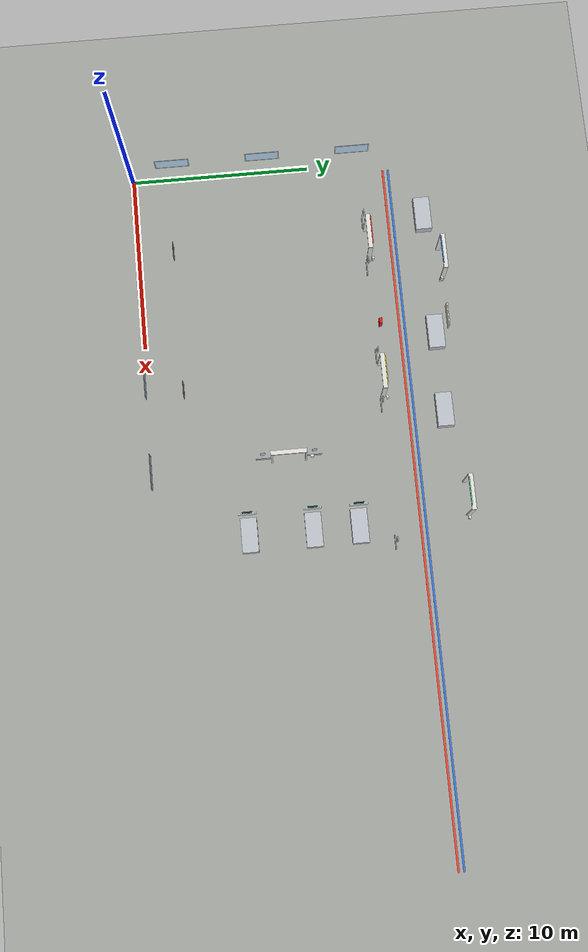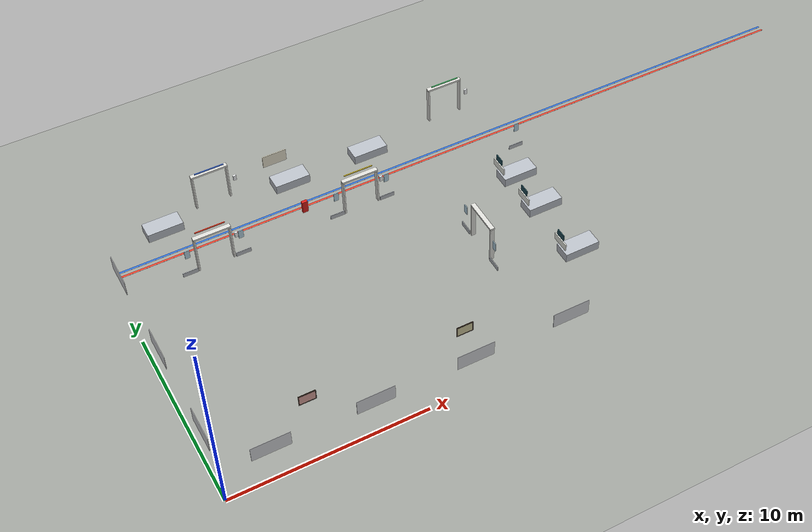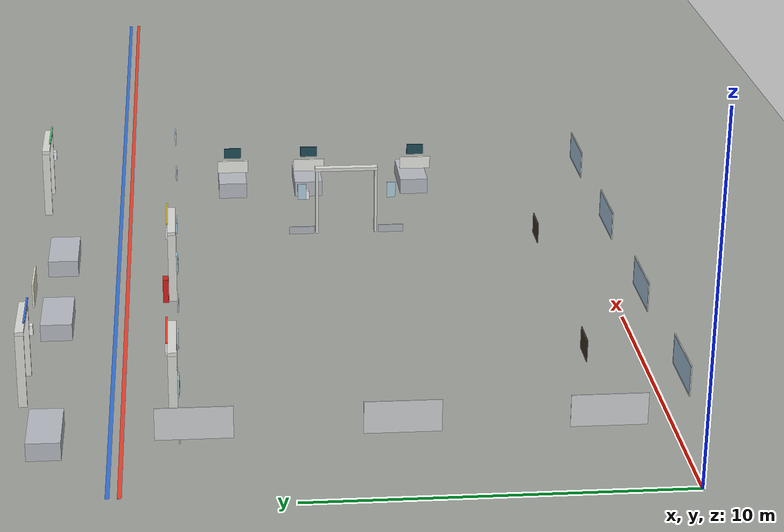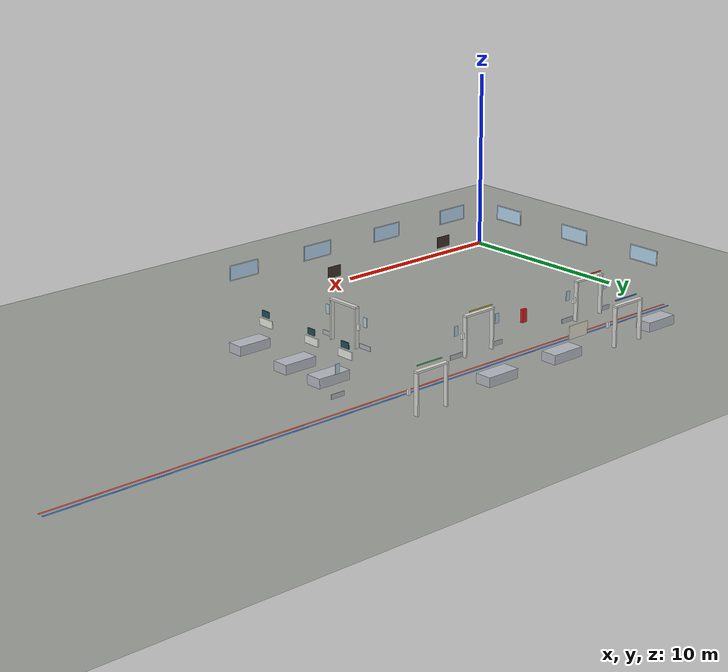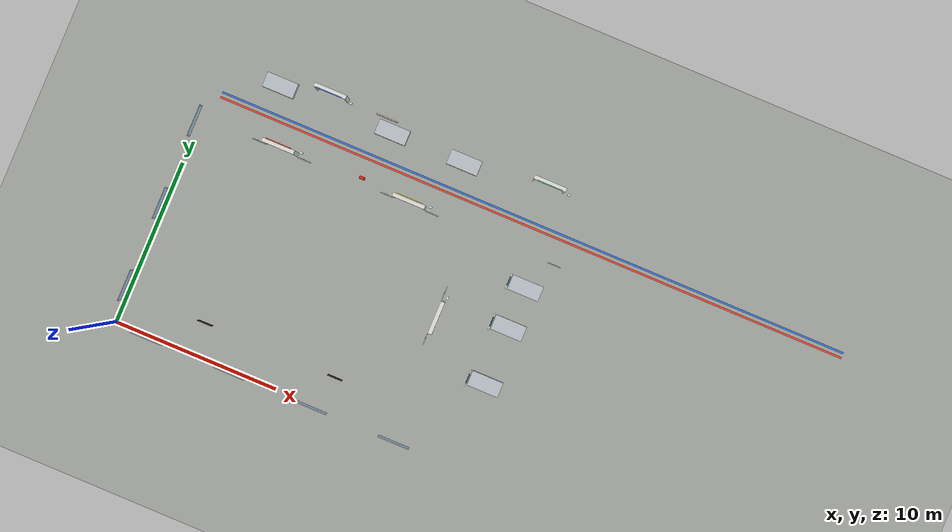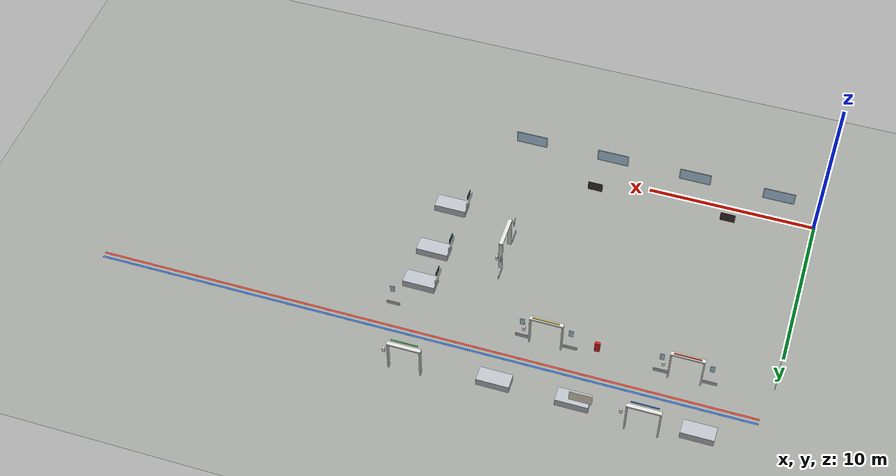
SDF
<sdf version="1.9">
 <world name="hospital">
  <model name="ground_plane">
   <static>true</static>
   <link name="link">
    <collision name="collision">
     <geometry><plane><normal>0 0 1</normal><size>200 200</size></plane></geometry>
    </collision>
    <visual name="visual">
     <pose>0 0 -0.03 0 0 0</pose>
     <cast_shadows>false</cast_shadows>
     <geometry><plane><normal>0 0 1</normal><size>200 200</size></plane></geometry>
     <material>
      <ambient>0.310 0.315 0.305 1.0</ambient>
      <diffuse>0.620 0.630 0.610 1.0</diffuse>
      <specular>0.14 0.14 0.14 1</specular>
      <emissive>0.000 0.000 0.000 1</emissive>
     </material>
    </visual>
   </link>
  </model>
  <model name="bed_18">
   <static>true</static>
   <pose>21.05 5.0 0.25 0 0 0</pose>
   <link name="link">
    <collision name="c">
     <geometry><box><size>1.8999999999999986 0.9000000000000004 0.5</size></box></geometry>
    </collision>
    <visual name="v">
     <visibility_flags>2</visibility_flags>
     <geometry><box><size>1.8999999999999986 0.9000000000000004 0.5</size></box></geometry>
     <material>
      <ambient>0.360 0.370 0.385 1.0</ambient>
      <diffuse>0.720 0.740 0.770 1.0</diffuse>
      <specular>0.14 0.14 0.14 1</specular>
      <emissive>0.000 0.000 0.000 1</emissive>
     </material>
    </visual>
   </link>
  </model>
  <model name="bed_20">
   <static>true</static>
   <pose>21.05 8.5 0.25 0 0 0</pose>
   <link name="link">
    <collision name="c">
     <geometry><box><size>1.8999999999999986 0.8999999999999986 0.5</size></box></geometry>
    </collision>
    <visual name="v">
     <visibility_flags>2</visibility_flags>
     <geometry><box><size>1.8999999999999986 0.8999999999999986 0.5</size></box></geometry>
     <material>
      <ambient>0.360 0.370 0.385 1.0</ambient>
      <diffuse>0.720 0.740 0.770 1.0</diffuse>
      <specular>0.14 0.14 0.14 1</specular>
      <emissive>0.000 0.000 0.000 1</emissive>
     </material>
    </visual>
   </link>
  </model>
  <model name="bed_26">
   <static>true</static>
   <pose>15.0 16.3 0.25 0 0 0</pose>
   <link name="link">
    <collision name="c">
     <geometry><box><size>1.8999999999999986 0.9000000000000004 0.5</size></box></geometry>
    </collision>
    <visual name="v">
     <visibility_flags>2</visibility_flags>
     <geometry><box><size>1.8999999999999986 0.9000000000000004 0.5</size></box></geometry>
     <material>
      <ambient>0.360 0.370 0.385 1.0</ambient>
      <diffuse>0.720 0.740 0.770 1.0</diffuse>
      <specular>0.14 0.14 0.14 1</specular>
      <emissive>0.000 0.000 0.000 1</emissive>
     </material>
    </visual>
   </link>
  </model>
  <model name="bed_28">
   <static>true</static>
   <pose>3.5 16.3 0.25 0 0 0</pose>
   <link name="link">
    <collision name="c">
     <geometry><box><size>1.9000000000000004 0.9000000000000004 0.5</size></box></geometry>
    </collision>
    <visual name="v">
     <visibility_flags>2</visibility_flags>
     <geometry><box><size>1.9000000000000004 0.9000000000000004 0.5</size></box></geometry>
     <material>
      <ambient>0.360 0.370 0.385 1.0</ambient>
      <diffuse>0.720 0.740 0.770 1.0</diffuse>
      <specular>0.14 0.14 0.14 1</specular>
      <emissive>0.000 0.000 0.000 1</emissive>
     </material>
    </visual>
   </link>
  </model>
  <model name="bed_29">
   <static>true</static>
   <pose>10.5 16.3 0.25 0 0 0</pose>
   <link name="link">
    <collision name="c">
     <geometry><box><size>1.8999999999999986 0.9000000000000004 0.5</size></box></geometry>
    </collision>
    <visual name="v">
     <visibility_flags>2</visibility_flags>
     <geometry><box><size>1.8999999999999986 0.9000000000000004 0.5</size></box></geometry>
     <material>
      <ambient>0.360 0.370 0.385 1.0</ambient>
      <diffuse>0.720 0.740 0.770 1.0</diffuse>
      <specular>0.14 0.14 0.14 1</specular>
      <emissive>0.000 0.000 0.000 1</emissive>
     </material>
    </visual>
   </link>
  </model>
  <model name="bed_44">
   <static>true</static>
   <pose>21.05 11.0 0.25 0 0 0</pose>
   <link name="link">
    <collision name="c">
     <geometry><box><size>1.8999999999999986 0.8999999999999986 0.5</size></box></geometry>
    </collision>
    <visual name="v">
     <visibility_flags>2</visibility_flags>
     <geometry><box><size>1.8999999999999986 0.8999999999999986 0.5</size></box></geometry>
     <material>
      <ambient>0.360 0.370 0.385 1.0</ambient>
      <diffuse>0.720 0.740 0.770 1.0</diffuse>
      <specular>0.14 0.14 0.14 1</specular>
      <emissive>0.000 0.000 0.000 1</emissive>
     </material>
    </visual>
   </link>
  </model>
  <model name="bed_18_panel">
   <static>true</static>
   <pose>19.990000000000002 5.0 1.15 0 0 0</pose>
   <link name="link">
    <visual name="v">
     <cast_shadows>false</cast_shadows>
     <geometry><box><size>0.06 0.9900000000000004 0.4</size></box></geometry>
     <material>
      <ambient>0.460 0.465 0.450 1.0</ambient>
      <diffuse>0.920 0.930 0.900 1.0</diffuse>
      <specular>0.14 0.14 0.14 1</specular>
      <emissive>0.000 0.000 0.000 1</emissive>
     </material>
    </visual>
   </link>
  </model>
  <model name="bed_18_monitor">
   <static>true</static>
   <pose>19.990000000000002 5.0 1.615 0 0 0</pose>
   <link name="link">
    <visual name="v">
     <cast_shadows>false</cast_shadows>
     <geometry><box><size>0.05 0.5445000000000003 0.33</size></box></geometry>
     <material>
      <ambient>0.060 0.150 0.170 1.0</ambient>
      <diffuse>0.120 0.300 0.340 1.0</diffuse>
      <specular>0.14 0.14 0.14 1</specular>
      <emissive>0.042 0.105 0.119 1</emissive>
     </material>
    </visual>
   </link>
  </model>
  <model name="bed_20_panel">
   <static>true</static>
   <pose>19.990000000000002 8.5 1.15 0 0 0</pose>
   <link name="link">
    <visual name="v">
     <cast_shadows>false</cast_shadows>
     <geometry><box><size>0.06 0.9899999999999985 0.4</size></box></geometry>
     <material>
      <ambient>0.460 0.465 0.450 1.0</ambient>
      <diffuse>0.920 0.930 0.900 1.0</diffuse>
      <specular>0.14 0.14 0.14 1</specular>
      <emissive>0.000 0.000 0.000 1</emissive>
     </material>
    </visual>
   </link>
  </model>
  <model name="bed_20_monitor">
   <static>true</static>
   <pose>19.990000000000002 8.5 1.615 0 0 0</pose>
   <link name="link">
    <visual name="v">
     <cast_shadows>false</cast_shadows>
     <geometry><box><size>0.05 0.5444999999999992 0.33</size></box></geometry>
     <material>
      <ambient>0.060 0.150 0.170 1.0</ambient>
      <diffuse>0.120 0.300 0.340 1.0</diffuse>
      <specular>0.14 0.14 0.14 1</specular>
      <emissive>0.042 0.105 0.119 1</emissive>
     </material>
    </visual>
   </link>
  </model>
  <model name="bed_44_panel">
   <static>true</static>
   <pose>19.990000000000002 11.0 1.15 0 0 0</pose>
   <link name="link">
    <visual name="v">
     <cast_shadows>false</cast_shadows>
     <geometry><box><size>0.06 0.9899999999999985 0.4</size></box></geometry>
     <material>
      <ambient>0.460 0.465 0.450 1.0</ambient>
      <diffuse>0.920 0.930 0.900 1.0</diffuse>
      <specular>0.14 0.14 0.14 1</specular>
      <emissive>0.000 0.000 0.000 1</emissive>
     </material>
    </visual>
   </link>
  </model>
  <model name="bed_44_monitor">
   <static>true</static>
   <pose>19.990000000000002 11.0 1.615 0 0 0</pose>
   <link name="link">
    <visual name="v">
     <cast_shadows>false</cast_shadows>
     <geometry><box><size>0.05 0.5444999999999992 0.33</size></box></geometry>
     <material>
      <ambient>0.060 0.150 0.170 1.0</ambient>
      <diffuse>0.120 0.300 0.340 1.0</diffuse>
      <specular>0.14 0.14 0.14 1</specular>
      <emissive>0.042 0.105 0.119 1</emissive>
     </material>
    </visual>
   </link>
  </model>
  <model name="door_0_jamb0">
   <static>true</static>
   <pose>5.569999999999999 17.0 1.05 0 0 0</pose>
   <link name="link">
    <visual name="v">
     <visibility_flags>4</visibility_flags>
     <geometry><box><size>0.08 0.24000000000000002 2.1</size></box></geometry>
     <material>
      <ambient>0.430 0.430 0.420 1.0</ambient>
      <diffuse>0.860 0.860 0.840 1.0</diffuse>
      <specular>0.14 0.14 0.14 1</specular>
      <emissive>0.000 0.000 0.000 1</emissive>
     </material>
    </visual>
   </link>
  </model>
  <model name="door_0_jamb1">
   <static>true</static>
   <pose>7.43 17.0 1.05 0 0 0</pose>
   <link name="link">
    <visual name="v">
     <visibility_flags>4</visibility_flags>
     <geometry><box><size>0.08 0.24000000000000002 2.1</size></box></geometry>
     <material>
      <ambient>0.430 0.430 0.420 1.0</ambient>
      <diffuse>0.860 0.860 0.840 1.0</diffuse>
      <specular>0.14 0.14 0.14 1</specular>
      <emissive>0.000 0.000 0.000 1</emissive>
     </material>
    </visual>
   </link>
  </model>
  <model name="door_0_head">
   <static>true</static>
   <pose>6.5 17.0 2.15 0 0 0</pose>
   <link name="link">
    <visual name="v">
     <visibility_flags>4</visibility_flags>
     <geometry><box><size>1.9599999999999997 0.24000000000000002 0.1</size></box></geometry>
     <material>
      <ambient>0.430 0.430 0.420 1.0</ambient>
      <diffuse>0.860 0.860 0.840 1.0</diffuse>
      <specular>0.14 0.14 0.14 1</specular>
      <emissive>0.000 0.000 0.000 1</emissive>
     </material>
    </visual>
   </link>
  </model>
  <model name="door_1_jamb0">
   <static>true</static>
   <pose>19.070000000000004 17.0 1.05 0 0 0</pose>
   <link name="link">
    <visual name="v">
     <visibility_flags>4</visibility_flags>
     <geometry><box><size>0.08 0.24000000000000002 2.1</size></box></geometry>
     <material>
      <ambient>0.430 0.430 0.420 1.0</ambient>
      <diffuse>0.860 0.860 0.840 1.0</diffuse>
      <specular>0.14 0.14 0.14 1</specular>
      <emissive>0.000 0.000 0.000 1</emissive>
     </material>
    </visual>
   </link>
  </model>
  <model name="door_1_jamb1">
   <static>true</static>
   <pose>20.929999999999996 17.0 1.05 0 0 0</pose>
   <link name="link">
    <visual name="v">
     <visibility_flags>4</visibility_flags>
     <geometry><box><size>0.08 0.24000000000000002 2.1</size></box></geometry>
     <material>
      <ambient>0.430 0.430 0.420 1.0</ambient>
      <diffuse>0.860 0.860 0.840 1.0</diffuse>
      <specular>0.14 0.14 0.14 1</specular>
      <emissive>0.000 0.000 0.000 1</emissive>
     </material>
    </visual>
   </link>
  </model>
  <model name="door_1_head">
   <static>true</static>
   <pose>20.0 17.0 2.15 0 0 0</pose>
   <link name="link">
    <visual name="v">
     <visibility_flags>4</visibility_flags>
     <geometry><box><size>1.959999999999997 0.24000000000000002 0.1</size></box></geometry>
     <material>
      <ambient>0.430 0.430 0.420 1.0</ambient>
      <diffuse>0.860 0.860 0.840 1.0</diffuse>
      <specular>0.14 0.14 0.14 1</specular>
      <emissive>0.000 0.000 0.000 1</emissive>
     </material>
    </visual>
   </link>
  </model>
  <model name="door_3_jamb0">
   <static>true</static>
   <pose>4.069999999999999 13.0 1.05 0 0 0</pose>
   <link name="link">
    <visual name="v">
     <visibility_flags>4</visibility_flags>
     <geometry><box><size>0.08 0.24000000000000002 2.1</size></box></geometry>
     <material>
      <ambient>0.430 0.430 0.420 1.0</ambient>
      <diffuse>0.860 0.860 0.840 1.0</diffuse>
      <specular>0.14 0.14 0.14 1</specular>
      <emissive>0.000 0.000 0.000 1</emissive>
     </material>
    </visual>
   </link>
  </model>
  <model name="door_3_jamb1">
   <static>true</static>
   <pose>5.930000000000001 13.0 1.05 0 0 0</pose>
   <link name="link">
    <visual name="v">
     <visibility_flags>4</visibility_flags>
     <geometry><box><size>0.08 0.24000000000000002 2.1</size></box></geometry>
     <material>
      <ambient>0.430 0.430 0.420 1.0</ambient>
      <diffuse>0.860 0.860 0.840 1.0</diffuse>
      <specular>0.14 0.14 0.14 1</specular>
      <emissive>0.000 0.000 0.000 1</emissive>
     </material>
    </visual>
   </link>
  </model>
  <model name="door_3_head">
   <static>true</static>
   <pose>5.0 13.0 2.15 0 0 0</pose>
   <link name="link">
    <visual name="v">
     <visibility_flags>4</visibility_flags>
     <geometry><box><size>1.9600000000000006 0.24000000000000002 0.1</size></box></geometry>
     <material>
      <ambient>0.430 0.430 0.420 1.0</ambient>
      <diffuse>0.860 0.860 0.840 1.0</diffuse>
      <specular>0.14 0.14 0.14 1</specular>
      <emissive>0.000 0.000 0.000 1</emissive>
     </material>
    </visual>
   </link>
  </model>
  <model name="door_3_glass0">
   <static>true</static>
   <pose>3.5899999999999994 12.859 1.45 0 0 0</pose>
   <link name="link">
    <visual name="v">
     <visibility_flags>4</visibility_flags>
     <geometry><box><size>0.26 0.04 0.5</size></box></geometry>
     <material>
      <ambient>0.350 0.410 0.440 1.0</ambient>
      <diffuse>0.700 0.820 0.880 1.0</diffuse>
      <specular>0.14 0.14 0.14 1</specular>
      <emissive>0.140 0.164 0.176 1</emissive>
     </material>
    </visual>
   </link>
  </model>
  <model name="door_3_kick0">
   <static>true</static>
   <pose>3.5899999999999994 12.859 0.14 0 0 0</pose>
   <link name="link">
    <visual name="v">
     <visibility_flags>4</visibility_flags>
     <geometry><box><size>0.8 0.04 0.24</size></box></geometry>
     <material>
      <ambient>0.350 0.360 0.370 1.0</ambient>
      <diffuse>0.700 0.720 0.740 1.0</diffuse>
      <specular>0.14 0.14 0.14 1</specular>
      <emissive>0.000 0.000 0.000 1</emissive>
     </material>
    </visual>
   </link>
  </model>
  <model name="door_3_glass1">
   <static>true</static>
   <pose>6.41 12.859 1.45 0 0 0</pose>
   <link name="link">
    <visual name="v">
     <visibility_flags>4</visibility_flags>
     <geometry><box><size>0.26 0.04 0.5</size></box></geometry>
     <material>
      <ambient>0.350 0.410 0.440 1.0</ambient>
      <diffuse>0.700 0.820 0.880 1.0</diffuse>
      <specular>0.14 0.14 0.14 1</specular>
      <emissive>0.140 0.164 0.176 1</emissive>
     </material>
    </visual>
   </link>
  </model>
  <model name="door_3_kick1">
   <static>true</static>
   <pose>6.41 12.859 0.14 0 0 0</pose>
   <link name="link">
    <visual name="v">
     <visibility_flags>4</visibility_flags>
     <geometry><box><size>0.8 0.04 0.24</size></box></geometry>
     <material>
      <ambient>0.350 0.360 0.370 1.0</ambient>
      <diffuse>0.700 0.720 0.740 1.0</diffuse>
      <specular>0.14 0.14 0.14 1</specular>
      <emissive>0.000 0.000 0.000 1</emissive>
     </material>
    </visual>
   </link>
  </model>
  <model name="door_4_jamb0">
   <static>true</static>
   <pose>12.070000000000002 13.0 1.05 0 0 0</pose>
   <link name="link">
    <visual name="v">
     <visibility_flags>4</visibility_flags>
     <geometry><box><size>0.08 0.24000000000000002 2.1</size></box></geometry>
     <material>
      <ambient>0.430 0.430 0.420 1.0</ambient>
      <diffuse>0.860 0.860 0.840 1.0</diffuse>
      <specular>0.14 0.14 0.14 1</specular>
      <emissive>0.000 0.000 0.000 1</emissive>
     </material>
    </visual>
   </link>
  </model>
  <model name="door_4_jamb1">
   <static>true</static>
   <pose>13.929999999999998 13.0 1.05 0 0 0</pose>
   <link name="link">
    <visual name="v">
     <visibility_flags>4</visibility_flags>
     <geometry><box><size>0.08 0.24000000000000002 2.1</size></box></geometry>
     <material>
      <ambient>0.430 0.430 0.420 1.0</ambient>
      <diffuse>0.860 0.860 0.840 1.0</diffuse>
      <specular>0.14 0.14 0.14 1</specular>
      <emissive>0.000 0.000 0.000 1</emissive>
     </material>
    </visual>
   </link>
  </model>
  <model name="door_4_head">
   <static>true</static>
   <pose>13.0 13.0 2.15 0 0 0</pose>
   <link name="link">
    <visual name="v">
     <visibility_flags>4</visibility_flags>
     <geometry><box><size>1.959999999999997 0.24000000000000002 0.1</size></box></geometry>
     <material>
      <ambient>0.430 0.430 0.420 1.0</ambient>
      <diffuse>0.860 0.860 0.840 1.0</diffuse>
      <specular>0.14 0.14 0.14 1</specular>
      <emissive>0.000 0.000 0.000 1</emissive>
     </material>
    </visual>
   </link>
  </model>
  <model name="door_4_glass0">
   <static>true</static>
   <pose>11.590000000000002 12.859 1.45 0 0 0</pose>
   <link name="link">
    <visual name="v">
     <visibility_flags>4</visibility_flags>
     <geometry><box><size>0.26 0.04 0.5</size></box></geometry>
     <material>
      <ambient>0.350 0.410 0.440 1.0</ambient>
      <diffuse>0.700 0.820 0.880 1.0</diffuse>
      <specular>0.14 0.14 0.14 1</specular>
      <emissive>0.140 0.164 0.176 1</emissive>
     </material>
    </visual>
   </link>
  </model>
  <model name="door_4_kick0">
   <static>true</static>
   <pose>11.590000000000002 12.859 0.14 0 0 0</pose>
   <link name="link">
    <visual name="v">
     <visibility_flags>4</visibility_flags>
     <geometry><box><size>0.8 0.04 0.24</size></box></geometry>
     <material>
      <ambient>0.350 0.360 0.370 1.0</ambient>
      <diffuse>0.700 0.720 0.740 1.0</diffuse>
      <specular>0.14 0.14 0.14 1</specular>
      <emissive>0.000 0.000 0.000 1</emissive>
     </material>
    </visual>
   </link>
  </model>
  <model name="door_4_glass1">
   <static>true</static>
   <pose>14.409999999999998 12.859 1.45 0 0 0</pose>
   <link name="link">
    <visual name="v">
     <visibility_flags>4</visibility_flags>
     <geometry><box><size>0.26 0.04 0.5</size></box></geometry>
     <material>
      <ambient>0.350 0.410 0.440 1.0</ambient>
      <diffuse>0.700 0.820 0.880 1.0</diffuse>
      <specular>0.14 0.14 0.14 1</specular>
      <emissive>0.140 0.164 0.176 1</emissive>
     </material>
    </visual>
   </link>
  </model>
  <model name="door_4_kick1">
   <static>true</static>
   <pose>14.409999999999998 12.859 0.14 0 0 0</pose>
   <link name="link">
    <visual name="v">
     <visibility_flags>4</visibility_flags>
     <geometry><box><size>0.8 0.04 0.24</size></box></geometry>
     <material>
      <ambient>0.350 0.360 0.370 1.0</ambient>
      <diffuse>0.700 0.720 0.740 1.0</diffuse>
      <specular>0.14 0.14 0.14 1</specular>
      <emissive>0.000 0.000 0.000 1</emissive>
     </material>
    </visual>
   </link>
  </model>
  <model name="door_5_jamb0">
   <static>true</static>
   <pose>17.0 6.569999999999999 1.05 0 0 0</pose>
   <link name="link">
    <visual name="v">
     <visibility_flags>4</visibility_flags>
     <geometry><box><size>0.24000000000000002 0.08 2.1</size></box></geometry>
     <material>
      <ambient>0.430 0.430 0.420 1.0</ambient>
      <diffuse>0.860 0.860 0.840 1.0</diffuse>
      <specular>0.14 0.14 0.14 1</specular>
      <emissive>0.000 0.000 0.000 1</emissive>
     </material>
    </visual>
   </link>
  </model>
  <model name="door_5_jamb1">
   <static>true</static>
   <pose>17.0 8.429999999999998 1.05 0 0 0</pose>
   <link name="link">
    <visual name="v">
     <visibility_flags>4</visibility_flags>
     <geometry><box><size>0.24000000000000002 0.08 2.1</size></box></geometry>
     <material>
      <ambient>0.430 0.430 0.420 1.0</ambient>
      <diffuse>0.860 0.860 0.840 1.0</diffuse>
      <specular>0.14 0.14 0.14 1</specular>
      <emissive>0.000 0.000 0.000 1</emissive>
     </material>
    </visual>
   </link>
  </model>
  <model name="door_5_head">
   <static>true</static>
   <pose>17.0 7.499999999999999 2.15 0 0 0</pose>
   <link name="link">
    <visual name="v">
     <visibility_flags>4</visibility_flags>
     <geometry><box><size>0.24000000000000002 1.9599999999999989 0.1</size></box></geometry>
     <material>
      <ambient>0.430 0.430 0.420 1.0</ambient>
      <diffuse>0.860 0.860 0.840 1.0</diffuse>
      <specular>0.14 0.14 0.14 1</specular>
      <emissive>0.000 0.000 0.000 1</emissive>
     </material>
    </visual>
   </link>
  </model>
  <model name="door_5_glass0">
   <static>true</static>
   <pose>16.859 6.09 1.45 0 0 0</pose>
   <link name="link">
    <visual name="v">
     <visibility_flags>4</visibility_flags>
     <geometry><box><size>0.04 0.26 0.5</size></box></geometry>
     <material>
      <ambient>0.350 0.410 0.440 1.0</ambient>
      <diffuse>0.700 0.820 0.880 1.0</diffuse>
      <specular>0.14 0.14 0.14 1</specular>
      <emissive>0.140 0.164 0.176 1</emissive>
     </material>
    </visual>
   </link>
  </model>
  <model name="door_5_kick0">
   <static>true</static>
   <pose>16.859 6.09 0.14 0 0 0</pose>
   <link name="link">
    <visual name="v">
     <visibility_flags>4</visibility_flags>
     <geometry><box><size>0.04 0.8 0.24</size></box></geometry>
     <material>
      <ambient>0.350 0.360 0.370 1.0</ambient>
      <diffuse>0.700 0.720 0.740 1.0</diffuse>
      <specular>0.14 0.14 0.14 1</specular>
      <emissive>0.000 0.000 0.000 1</emissive>
     </material>
    </visual>
   </link>
  </model>
  <model name="door_5_glass1">
   <static>true</static>
   <pose>16.859 8.909999999999998 1.45 0 0 0</pose>
   <link name="link">
    <visual name="v">
     <visibility_flags>4</visibility_flags>
     <geometry><box><size>0.04 0.26 0.5</size></box></geometry>
     <material>
      <ambient>0.350 0.410 0.440 1.0</ambient>
      <diffuse>0.700 0.820 0.880 1.0</diffuse>
      <specular>0.14 0.14 0.14 1</specular>
      <emissive>0.140 0.164 0.176 1</emissive>
     </material>
    </visual>
   </link>
  </model>
  <model name="door_5_kick1">
   <static>true</static>
   <pose>16.859 8.909999999999998 0.14 0 0 0</pose>
   <link name="link">
    <visual name="v">
     <visibility_flags>4</visibility_flags>
     <geometry><box><size>0.04 0.8 0.24</size></box></geometry>
     <material>
      <ambient>0.350 0.360 0.370 1.0</ambient>
      <diffuse>0.700 0.720 0.740 1.0</diffuse>
      <specular>0.14 0.14 0.14 1</specular>
      <emissive>0.000 0.000 0.000 1</emissive>
     </material>
    </visual>
   </link>
  </model>
  <model name="door_6_glass0">
   <static>true</static>
   <pose>22.090000000000003 12.859 1.45 0 0 0</pose>
   <link name="link">
    <visual name="v">
     <visibility_flags>4</visibility_flags>
     <geometry><box><size>0.26 0.04 0.5</size></box></geometry>
     <material>
      <ambient>0.350 0.410 0.440 1.0</ambient>
      <diffuse>0.700 0.820 0.880 1.0</diffuse>
      <specular>0.14 0.14 0.14 1</specular>
      <emissive>0.140 0.164 0.176 1</emissive>
     </material>
    </visual>
   </link>
  </model>
  <model name="door_6_kick0">
   <static>true</static>
   <pose>22.090000000000003 12.859 0.14 0 0 0</pose>
   <link name="link">
    <visual name="v">
     <visibility_flags>4</visibility_flags>
     <geometry><box><size>0.8 0.04 0.24</size></box></geometry>
     <material>
      <ambient>0.350 0.360 0.370 1.0</ambient>
      <diffuse>0.700 0.720 0.740 1.0</diffuse>
      <specular>0.14 0.14 0.14 1</specular>
      <emissive>0.000 0.000 0.000 1</emissive>
     </material>
    </visual>
   </link>
  </model>
  <model name="sign_male_ward_glow">
   <static>true</static>
   <pose>6.5 16.872 2.3850000000000002 0 0 0</pose>
   <link name="link">
    <visual name="v">
     <cast_shadows>false</cast_shadows>
     <geometry><box><size>1.568 0.049 0.05</size></box></geometry>
     <material>
      <ambient>0.125 0.225 0.450 1.0</ambient>
      <diffuse>0.250 0.450 0.900 1.0</diffuse>
      <specular>0.14 0.14 0.14 1</specular>
      <emissive>0.212 0.383 0.765 1</emissive>
     </material>
    </visual>
   </link>
  </model>
  <model name="sign_general_ward_1_glow">
   <static>true</static>
   <pose>20.0 16.872 2.3850000000000002 0 0 0</pose>
   <link name="link">
    <visual name="v">
     <cast_shadows>false</cast_shadows>
     <geometry><box><size>1.568 0.049 0.05</size></box></geometry>
     <material>
      <ambient>0.150 0.400 0.225 1.0</ambient>
      <diffuse>0.300 0.800 0.450 1.0</diffuse>
      <specular>0.14 0.14 0.14 1</specular>
      <emissive>0.255 0.680 0.383 1</emissive>
     </material>
    </visual>
   </link>
  </model>
  <model name="sign_ward_icu_emerg_glow">
   <static>true</static>
   <pose>5.0 13.128 2.3850000000000002 0 0 0</pose>
   <link name="link">
    <visual name="v">
     <cast_shadows>false</cast_shadows>
     <geometry><box><size>1.568 0.049 0.05</size></box></geometry>
     <material>
      <ambient>0.475 0.125 0.075 1.0</ambient>
      <diffuse>0.950 0.250 0.150 1.0</diffuse>
      <specular>0.14 0.14 0.14 1</specular>
      <emissive>0.807 0.212 0.128 1</emissive>
     </material>
    </visual>
   </link>
  </model>
  <model name="sign_prayer_glow">
   <static>true</static>
   <pose>13.0 13.128 2.3850000000000002 0 0 0</pose>
   <link name="link">
    <visual name="v">
     <cast_shadows>false</cast_shadows>
     <geometry><box><size>1.568 0.049 0.05</size></box></geometry>
     <material>
      <ambient>0.425 0.375 0.100 1.0</ambient>
      <diffuse>0.850 0.750 0.200 1.0</diffuse>
      <specular>0.14 0.14 0.14 1</specular>
      <emissive>0.722 0.637 0.170 1</emissive>
     </material>
    </visual>
   </link>
  </model>
  <model name="wall_0_winf0">
   <static>true</static>
   <pose>2.4124999999999988 0.112 2.225 0 0 0</pose>
   <link name="link">
    <visual name="v">
     <cast_shadows>false</cast_shadows>
     <geometry><box><size>1.9000000000000001 0.024 0.85</size></box></geometry>
     <material>
      <ambient>0.410 0.415 0.420 1.0</ambient>
      <diffuse>0.820 0.830 0.840 1.0</diffuse>
      <specular>0.14 0.14 0.14 1</specular>
      <emissive>0.000 0.000 0.000 1</emissive>
     </material>
    </visual>
   </link>
  </model>
  <model name="wall_0_win0">
   <static>true</static>
   <pose>2.4124999999999988 0.12 2.225 0 0 0</pose>
   <link name="link">
    <visual name="v">
     <cast_shadows>false</cast_shadows>
     <geometry><box><size>1.8 0.012 0.75</size></box></geometry>
     <material>
      <ambient>0.360 0.425 0.475 1.0</ambient>
      <diffuse>0.720 0.850 0.950 1.0</diffuse>
      <specular>0.14 0.14 0.14 1</specular>
      <emissive>0.468 0.552 0.617 1</emissive>
     </material>
    </visual>
   </link>
  </model>
  <model name="wall_0_winf1">
   <static>true</static>
   <pose>7.437499999999999 0.112 2.225 0 0 0</pose>
   <link name="link">
    <visual name="v">
     <cast_shadows>false</cast_shadows>
     <geometry><box><size>1.9000000000000001 0.024 0.85</size></box></geometry>
     <material>
      <ambient>0.410 0.415 0.420 1.0</ambient>
      <diffuse>0.820 0.830 0.840 1.0</diffuse>
      <specular>0.14 0.14 0.14 1</specular>
      <emissive>0.000 0.000 0.000 1</emissive>
     </material>
    </visual>
   </link>
  </model>
  <model name="wall_0_win1">
   <static>true</static>
   <pose>7.437499999999999 0.12 2.225 0 0 0</pose>
   <link name="link">
    <visual name="v">
     <cast_shadows>false</cast_shadows>
     <geometry><box><size>1.8 0.012 0.75</size></box></geometry>
     <material>
      <ambient>0.360 0.425 0.475 1.0</ambient>
      <diffuse>0.720 0.850 0.950 1.0</diffuse>
      <specular>0.14 0.14 0.14 1</specular>
      <emissive>0.468 0.552 0.617 1</emissive>
     </material>
    </visual>
   </link>
  </model>
  <model name="wall_0_winf2">
   <static>true</static>
   <pose>12.462499999999999 0.112 2.225 0 0 0</pose>
   <link name="link">
    <visual name="v">
     <cast_shadows>false</cast_shadows>
     <geometry><box><size>1.9000000000000001 0.024 0.85</size></box></geometry>
     <material>
      <ambient>0.410 0.415 0.420 1.0</ambient>
      <diffuse>0.820 0.830 0.840 1.0</diffuse>
      <specular>0.14 0.14 0.14 1</specular>
      <emissive>0.000 0.000 0.000 1</emissive>
     </material>
    </visual>
   </link>
  </model>
  <model name="wall_0_win2">
   <static>true</static>
   <pose>12.462499999999999 0.12 2.225 0 0 0</pose>
   <link name="link">
    <visual name="v">
     <cast_shadows>false</cast_shadows>
     <geometry><box><size>1.8 0.012 0.75</size></box></geometry>
     <material>
      <ambient>0.360 0.425 0.475 1.0</ambient>
      <diffuse>0.720 0.850 0.950 1.0</diffuse>
      <specular>0.14 0.14 0.14 1</specular>
      <emissive>0.468 0.552 0.617 1</emissive>
     </material>
    </visual>
   </link>
  </model>
  <model name="wall_0_winf3">
   <static>true</static>
   <pose>17.4875 0.112 2.225 0 0 0</pose>
   <link name="link">
    <visual name="v">
     <cast_shadows>false</cast_shadows>
     <geometry><box><size>1.9000000000000001 0.024 0.85</size></box></geometry>
     <material>
      <ambient>0.410 0.415 0.420 1.0</ambient>
      <diffuse>0.820 0.830 0.840 1.0</diffuse>
      <specular>0.14 0.14 0.14 1</specular>
      <emissive>0.000 0.000 0.000 1</emissive>
     </material>
    </visual>
   </link>
  </model>
  <model name="wall_0_win3">
   <static>true</static>
   <pose>17.4875 0.12 2.225 0 0 0</pose>
   <link name="link">
    <visual name="v">
     <cast_shadows>false</cast_shadows>
     <geometry><box><size>1.8 0.012 0.75</size></box></geometry>
     <material>
      <ambient>0.360 0.425 0.475 1.0</ambient>
      <diffuse>0.720 0.850 0.950 1.0</diffuse>
      <specular>0.14 0.14 0.14 1</specular>
      <emissive>0.468 0.552 0.617 1</emissive>
     </material>
    </visual>
   </link>
  </model>
  <model name="wall_2_winf0">
   <static>true</static>
   <pose>0.112 2.416666666666665 2.225 0 0 0</pose>
   <link name="link">
    <visual name="v">
     <cast_shadows>false</cast_shadows>
     <geometry><box><size>0.024 1.9000000000000001 0.85</size></box></geometry>
     <material>
      <ambient>0.410 0.415 0.420 1.0</ambient>
      <diffuse>0.820 0.830 0.840 1.0</diffuse>
      <specular>0.14 0.14 0.14 1</specular>
      <emissive>0.000 0.000 0.000 1</emissive>
     </material>
    </visual>
   </link>
  </model>
  <model name="wall_2_win0">
   <static>true</static>
   <pose>0.12 2.416666666666665 2.225 0 0 0</pose>
   <link name="link">
    <visual name="v">
     <cast_shadows>false</cast_shadows>
     <geometry><box><size>0.012 1.8 0.75</size></box></geometry>
     <material>
      <ambient>0.360 0.425 0.475 1.0</ambient>
      <diffuse>0.720 0.850 0.950 1.0</diffuse>
      <specular>0.14 0.14 0.14 1</specular>
      <emissive>0.468 0.552 0.617 1</emissive>
     </material>
    </visual>
   </link>
  </model>
  <model name="wall_2_winf1">
   <static>true</static>
   <pose>0.112 7.449999999999999 2.225 0 0 0</pose>
   <link name="link">
    <visual name="v">
     <cast_shadows>false</cast_shadows>
     <geometry><box><size>0.024 1.9000000000000001 0.85</size></box></geometry>
     <material>
      <ambient>0.410 0.415 0.420 1.0</ambient>
      <diffuse>0.820 0.830 0.840 1.0</diffuse>
      <specular>0.14 0.14 0.14 1</specular>
      <emissive>0.000 0.000 0.000 1</emissive>
     </material>
    </visual>
   </link>
  </model>
  <model name="wall_2_win1">
   <static>true</static>
   <pose>0.12 7.449999999999999 2.225 0 0 0</pose>
   <link name="link">
    <visual name="v">
     <cast_shadows>false</cast_shadows>
     <geometry><box><size>0.012 1.8 0.75</size></box></geometry>
     <material>
      <ambient>0.360 0.425 0.475 1.0</ambient>
      <diffuse>0.720 0.850 0.950 1.0</diffuse>
      <specular>0.14 0.14 0.14 1</specular>
      <emissive>0.468 0.552 0.617 1</emissive>
     </material>
    </visual>
   </link>
  </model>
  <model name="wall_2_winf2">
   <static>true</static>
   <pose>0.112 12.483333333333334 2.225 0 0 0</pose>
   <link name="link">
    <visual name="v">
     <cast_shadows>false</cast_shadows>
     <geometry><box><size>0.024 1.9000000000000001 0.85</size></box></geometry>
     <material>
      <ambient>0.410 0.415 0.420 1.0</ambient>
      <diffuse>0.820 0.830 0.840 1.0</diffuse>
      <specular>0.14 0.14 0.14 1</specular>
      <emissive>0.000 0.000 0.000 1</emissive>
     </material>
    </visual>
   </link>
  </model>
  <model name="wall_2_win2">
   <static>true</static>
   <pose>0.12 12.483333333333334 2.225 0 0 0</pose>
   <link name="link">
    <visual name="v">
     <cast_shadows>false</cast_shadows>
     <geometry><box><size>0.012 1.8 0.75</size></box></geometry>
     <material>
      <ambient>0.360 0.425 0.475 1.0</ambient>
      <diffuse>0.720 0.850 0.950 1.0</diffuse>
      <specular>0.14 0.14 0.14 1</specular>
      <emissive>0.468 0.552 0.617 1</emissive>
     </material>
    </visual>
   </link>
  </model>
  <model name="notice_0">
   <static>true</static>
   <pose>10.0 16.875 1.5 0 0 0</pose>
   <link name="link">
    <visual name="v">
     <cast_shadows>false</cast_shadows>
     <geometry><box><size>1.3 0.05 0.7</size></box></geometry>
     <material>
      <ambient>0.450 0.440 0.400 1.0</ambient>
      <diffuse>0.900 0.880 0.800 1.0</diffuse>
      <specular>0.14 0.14 0.14 1</specular>
      <emissive>0.000 0.000 0.000 1</emissive>
     </material>
    </visual>
   </link>
  </model>
  <model name="dispenser_0">
   <static>true</static>
   <pose>7.749999999999999 16.85 1.23 0 0 0</pose>
   <link name="link">
    <visual name="v">
     <cast_shadows>false</cast_shadows>
     <geometry><box><size>0.16 0.1 0.3</size></box></geometry>
     <material>
      <ambient>0.470 0.475 0.480 1.0</ambient>
      <diffuse>0.940 0.950 0.960 1.0</diffuse>
      <specular>0.14 0.14 0.14 1</specular>
      <emissive>0.000 0.000 0.000 1</emissive>
     </material>
    </visual>
   </link>
  </model>
  <model name="dispenser_1">
   <static>true</static>
   <pose>21.25 16.85 1.23 0 0 0</pose>
   <link name="link">
    <visual name="v">
     <cast_shadows>false</cast_shadows>
     <geometry><box><size>0.16 0.1 0.3</size></box></geometry>
     <material>
      <ambient>0.470 0.475 0.480 1.0</ambient>
      <diffuse>0.940 0.950 0.960 1.0</diffuse>
      <specular>0.14 0.14 0.14 1</specular>
      <emissive>0.000 0.000 0.000 1</emissive>
     </material>
    </visual>
   </link>
  </model>
  <model name="dispenser_3">
   <static>true</static>
   <pose>6.25 13.15 1.23 0 0 0</pose>
   <link name="link">
    <visual name="v">
     <cast_shadows>false</cast_shadows>
     <geometry><box><size>0.16 0.1 0.3</size></box></geometry>
     <material>
      <ambient>0.470 0.475 0.480 1.0</ambient>
      <diffuse>0.940 0.950 0.960 1.0</diffuse>
      <specular>0.14 0.14 0.14 1</specular>
      <emissive>0.000 0.000 0.000 1</emissive>
     </material>
    </visual>
   </link>
  </model>
  <model name="dispenser_4">
   <static>true</static>
   <pose>14.249999999999998 13.15 1.23 0 0 0</pose>
   <link name="link">
    <visual name="v">
     <cast_shadows>false</cast_shadows>
     <geometry><box><size>0.16 0.1 0.3</size></box></geometry>
     <material>
      <ambient>0.470 0.475 0.480 1.0</ambient>
      <diffuse>0.940 0.950 0.960 1.0</diffuse>
      <specular>0.14 0.14 0.14 1</specular>
      <emissive>0.000 0.000 0.000 1</emissive>
     </material>
    </visual>
   </link>
  </model>
  <model name="dispenser_5">
   <static>true</static>
   <pose>17.15 8.749999999999998 1.23 0 0 0</pose>
   <link name="link">
    <visual name="v">
     <cast_shadows>false</cast_shadows>
     <geometry><box><size>0.1 0.16 0.3</size></box></geometry>
     <material>
      <ambient>0.470 0.475 0.480 1.0</ambient>
      <diffuse>0.940 0.950 0.960 1.0</diffuse>
      <specular>0.14 0.14 0.14 1</specular>
      <emissive>0.000 0.000 0.000 1</emissive>
     </material>
    </visual>
   </link>
  </model>
  <model name="extinguisher_0">
   <static>true</static>
   <pose>10.0 13.18 1.3 0 0 0</pose>
   <link name="link">
    <visual name="v">
     <cast_shadows>false</cast_shadows>
     <geometry><box><size>0.3 0.16 0.7</size></box></geometry>
     <material>
      <ambient>0.425 0.060 0.050 1.0</ambient>
      <diffuse>0.850 0.120 0.100 1.0</diffuse>
      <specular>0.14 0.14 0.14 1</specular>
      <emissive>0.000 0.000 0.000 1</emissive>
     </material>
    </visual>
   </link>
  </model>
  <model name="wayline_0">
   <static>true</static>
   <pose>20.0 14.35 0.0025 0 0 0</pose>
   <link name="link">
    <visual name="v">
     <cast_shadows>false</cast_shadows>
     <geometry><box><size>39.0 0.11 0.003</size></box></geometry>
     <material>
      <ambient>0.460 0.130 0.090 1.0</ambient>
      <diffuse>0.920 0.260 0.180 1.0</diffuse>
      <specular>0.14 0.14 0.14 1</specular>
      <emissive>0.000 0.000 0.000 1</emissive>
     </material>
    </visual>
   </link>
  </model>
  <model name="wayline_1">
   <static>true</static>
   <pose>20.0 14.65 0.0025 0 0 0</pose>
   <link name="link">
    <visual name="v">
     <cast_shadows>false</cast_shadows>
     <geometry><box><size>39.0 0.11 0.003</size></box></geometry>
     <material>
      <ambient>0.100 0.225 0.425 1.0</ambient>
      <diffuse>0.200 0.450 0.850 1.0</diffuse>
      <specular>0.14 0.14 0.14 1</specular>
      <emissive>0.000 0.000 0.000 1</emissive>
     </material>
    </visual>
   </link>
  </model>
  <model name="art_ward_icu_emerg_frame">
   <static>true</static>
   <pose>5.0 2.12 1.62 0 0 0</pose>
   <link name="link">
    <visual name="v">
     <cast_shadows>false</cast_shadows>
     <geometry><box><size>0.88 0.03 0.62</size></box></geometry>
     <material>
      <ambient>0.125 0.100 0.080 1.0</ambient>
      <diffuse>0.250 0.200 0.160 1.0</diffuse>
      <specular>0.14 0.14 0.14 1</specular>
      <emissive>0.000 0.000 0.000 1</emissive>
     </material>
    </visual>
   </link>
  </model>
  <model name="art_ward_icu_emerg">
   <static>true</static>
   <pose>5.0 2.1140000000000003 1.62 0 0 0</pose>
   <link name="link">
    <visual name="v">
     <cast_shadows>false</cast_shadows>
     <geometry><box><size>0.8 0.02 0.5</size></box></geometry>
     <material>
      <ambient>0.417 0.312 0.298 1.0</ambient>
      <diffuse>0.835 0.625 0.595 1.0</diffuse>
      <specular>0.14 0.14 0.14 1</specular>
      <emissive>0.000 0.000 0.000 1</emissive>
     </material>
    </visual>
   </link>
  </model>
  <model name="art_prayer_frame">
   <static>true</static>
   <pose>13.0 2.12 1.62 0 0 0</pose>
   <link name="link">
    <visual name="v">
     <cast_shadows>false</cast_shadows>
     <geometry><box><size>0.88 0.03 0.62</size></box></geometry>
     <material>
      <ambient>0.125 0.100 0.080 1.0</ambient>
      <diffuse>0.250 0.200 0.160 1.0</diffuse>
      <specular>0.14 0.14 0.14 1</specular>
      <emissive>0.000 0.000 0.000 1</emissive>
     </material>
    </visual>
   </link>
  </model>
  <model name="art_prayer">
   <static>true</static>
   <pose>13.0 2.1140000000000003 1.62 0 0 0</pose>
   <link name="link">
    <visual name="v">
     <cast_shadows>false</cast_shadows>
     <geometry><box><size>0.8 0.02 0.5</size></box></geometry>
     <material>
      <ambient>0.403 0.388 0.305 1.0</ambient>
      <diffuse>0.805 0.775 0.610 1.0</diffuse>
      <specular>0.14 0.14 0.14 1</specular>
      <emissive>0.000 0.000 0.000 1</emissive>
     </material>
    </visual>
   </link>
  </model>
 </world>
</sdf>
